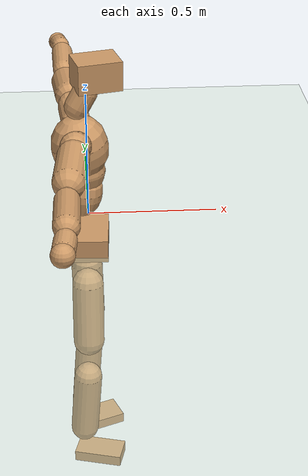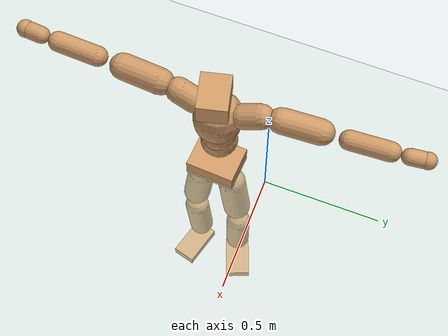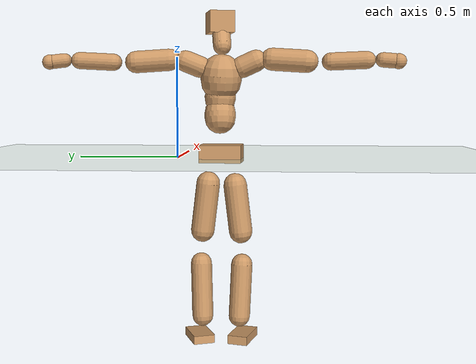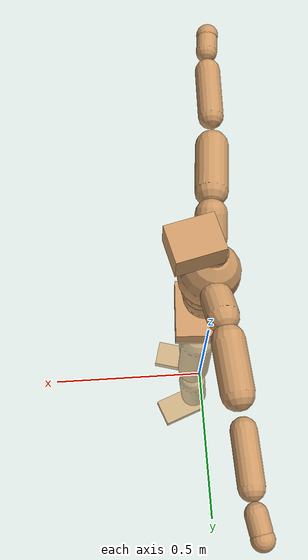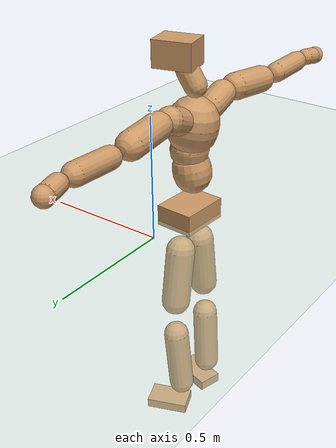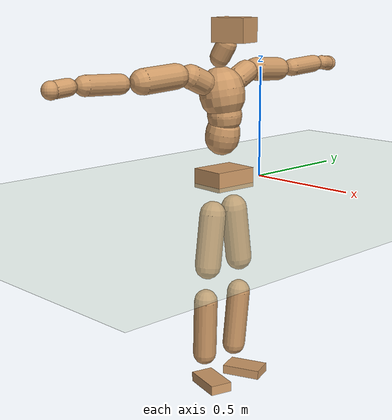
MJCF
<mujoco model="humanoid">
  <compiler coordinate="local" angle="radian"/>
  <default>
    <joint damping="0.0" armature="0.01" stiffness="0.0" limited="true"/>
    <geom conaffinity="1" condim="3" contype="7" margin="0.001" rgba="0.8 0.6 .4 1"/>
  </default>
  <asset>
    <texture type="skybox" builtin="gradient" rgb1=".4 .5 .6" rgb2="0 0 0" width="100" height="100"/>
    <texture builtin="flat" height="1278" mark="cross" markrgb="1 1 1" name="texgeom" random="0.01" rgb1="0.8 0.6 0.4" rgb2="0.8 0.6 0.4" type="cube" width="127"/>
    <texture builtin="checker" height="100" name="texplane" rgb1="0 0 0" rgb2="0.8 0.8 0.8" type="2d" width="100"/>
    <material name="MatPlane" reflectance="0.5" shininess="1" specular="1" texrepeat="60 60" texture="texplane"/>
    <material name="geom" texture="texgeom" texuniform="true"/>
  </asset>
  <worldbody>
    <light cutoff="100" diffuse="1 1 1" dir="-0 0 -1.3" directional="true" exponent="1" pos="0 0 1.3" specular=".1 .1 .1"/>
    <geom conaffinity="1" condim="3" name="floor" pos="0 0 0" rgba="0.8 0.9 0.8 1" size="100 100 .2" type="plane" material="MatPlane"/>
    <body name="Pelvis" pos="0.0002 -0.2226 0.0304">
      <freejoint name="Pelvis"/>
      <geom type="box" contype="1" conaffinity="1" density="500" pos="-0.0113 0.0006 -0.0079" size="0.0804 0.1042 0.0436" quat="0.9996 0.0000 0.0000 -0.0268" name="Pelvis"/>
      <body name="L_Hip" pos="-0.0158 0.0581 -0.0792">
        <joint name="L_Hip_x" type="hinge" pos="0 0 0" axis="1 0 0" stiffness="800" damping="80" armature="0.02" range="-180.0000 180.0000"/>
        <joint name="L_Hip_y" type="hinge" pos="0 0 0" axis="0 1 0" stiffness="800" damping="80" armature="0.02" range="-180.0000 180.0000"/>
        <joint name="L_Hip_z" type="hinge" pos="0 0 0" axis="0 0 1" stiffness="800" damping="80" armature="0.02" range="-180.0000 180.0000"/>
        <geom type="capsule" contype="1" conaffinity="1" density="500" fromto="0.0018 0.0096 -0.0803 0.0073 0.0384 -0.3211" size="0.0595" name="L_Hip"/>
        <body name="L_Knee" pos="0.0091 0.0481 -0.4013">
          <joint name="L_Knee_x" type="hinge" pos="0 0 0" axis="1 0 0" stiffness="800" damping="80" armature="0.02" range="-180.0000 180.0000"/>
          <joint name="L_Knee_y" type="hinge" pos="0 0 0" axis="0 1 0" stiffness="800" damping="80" armature="0.02" range="-180.0000 180.0000"/>
          <joint name="L_Knee_z" type="hinge" pos="0 0 0" axis="0 0 1" stiffness="800" damping="80" armature="0.02" range="-180.0000 180.0000"/>
          <geom type="capsule" contype="1" conaffinity="1" density="500" fromto="-0.0070 -0.0029 -0.0893 -0.0282 -0.0114 -0.3573" size="0.0531" name="L_Knee"/>
          <body name="L_Ankle" pos="-0.0352 -0.0143 -0.4467">
            <joint name="L_Ankle_x" type="hinge" pos="0 0 0" axis="1 0 0" stiffness="800" damping="80" armature="0.02" range="-180.0000 180.0000"/>
            <joint name="L_Ankle_y" type="hinge" pos="0 0 0" axis="0 1 0" stiffness="800" damping="80" armature="0.02" range="-180.0000 180.0000"/>
            <joint name="L_Ankle_z" type="hinge" pos="0 0 0" axis="0 0 1" stiffness="800" damping="80" armature="0.02" range="-180.0000 180.0000"/>
            <geom type="box" contype="1" conaffinity="1" density="500" pos="0.0615 0.0239 -0.0312" size="0.0888 0.0545 0.0207" quat="0.9829 0.0000 0.0000 0.1842" name="L_Ankle"/>
            <body name="L_Toe" pos="0.1229 0.0477 -0.0624">
              <joint name="L_Toe_x" type="hinge" pos="0 0 0" axis="1 0 0" stiffness="500" damping="50" armature="0.02" range="-180.0000 180.0000"/>
              <joint name="L_Toe_y" type="hinge" pos="0 0 0" axis="0 1 0" stiffness="500" damping="50" armature="0.02" range="-180.0000 180.0000"/>
              <joint name="L_Toe_z" type="hinge" pos="0 0 0" axis="0 0 1" stiffness="500" damping="50" armature="0.02" range="-180.0000 180.0000"/>
              <geom type="box" contype="1" conaffinity="1" density="500" pos="0.0000 0.0000 0.0318" size="0.0011 0.0026 0.0011" quat="0.9821 0.0000 0.0000 0.1883" name="L_Toe"/>
            </body>
          </body>
        </body>
      </body>
      <body name="R_Hip" pos="-0.0127 -0.0591 -0.0872">
        <joint name="R_Hip_x" type="hinge" pos="0 0 0" axis="1 0 0" stiffness="800" damping="80" armature="0.02" range="-180.0000 180.0000"/>
        <joint name="R_Hip_y" type="hinge" pos="0 0 0" axis="0 1 0" stiffness="800" damping="80" armature="0.02" range="-180.0000 180.0000"/>
        <joint name="R_Hip_z" type="hinge" pos="0 0 0" axis="0 0 1" stiffness="800" damping="80" armature="0.02" range="-180.0000 180.0000"/>
        <geom type="capsule" contype="1" conaffinity="1" density="500" fromto="-0.0008 -0.0096 -0.0794 -0.0031 -0.0385 -0.3175" size="0.0589" name="R_Hip"/>
        <body name="R_Knee" pos="-0.0039 -0.0481 -0.3969">
          <joint name="R_Knee_x" type="hinge" pos="0 0 0" axis="1 0 0" stiffness="800" damping="80" armature="0.02" range="-180.0000 180.0000"/>
          <joint name="R_Knee_y" type="hinge" pos="0 0 0" axis="0 1 0" stiffness="800" damping="80" armature="0.02" range="-180.0000 180.0000"/>
          <joint name="R_Knee_z" type="hinge" pos="0 0 0" axis="0 0 1" stiffness="800" damping="80" armature="0.02" range="-180.0000 180.0000"/>
          <geom type="capsule" contype="1" conaffinity="1" density="500" fromto="-0.0064 0.0037 -0.0878 -0.0258 0.0147 -0.3512" size="0.0537" name="R_Knee"/>
          <body name="R_Ankle" pos="-0.0322 0.0184 -0.439">
            <joint name="R_Ankle_x" type="hinge" pos="0 0 0" axis="1 0 0" stiffness="800" damping="80" armature="0.02" range="-180.0000 180.0000"/>
            <joint name="R_Ankle_y" type="hinge" pos="0 0 0" axis="0 1 0" stiffness="800" damping="80" armature="0.02" range="-180.0000 180.0000"/>
            <joint name="R_Ankle_z" type="hinge" pos="0 0 0" axis="0 0 1" stiffness="800" damping="80" armature="0.02" range="-180.0000 180.0000"/>
            <geom type="box" contype="1" conaffinity="1" density="500" pos="0.0656 -0.0178 -0.0329" size="0.0926 0.0508 0.0221" quat="0.9912 0.0000 0.0000 -0.1323" name="R_Ankle"/>
            <body name="R_Toe" pos="0.1311 -0.0356 -0.0658">
              <joint name="R_Toe_x" type="hinge" pos="0 0 0" axis="1 0 0" stiffness="500" damping="50" armature="0.02" range="-180.0000 180.0000"/>
              <joint name="R_Toe_y" type="hinge" pos="0 0 0" axis="0 1 0" stiffness="500" damping="50" armature="0.02" range="-180.0000 180.0000"/>
              <joint name="R_Toe_z" type="hinge" pos="0 0 0" axis="0 0 1" stiffness="500" damping="50" armature="0.02" range="-180.0000 180.0000"/>
              <geom type="box" contype="1" conaffinity="1" density="500" pos="0.0000 0.0000 0.0327" size="0.0011 0.0025 0.0011" quat="0.9923 0.0000 0.0000 -0.1235" name="R_Toe"/>
            </body>
          </body>
        </body>
      </body>
      <body name="Torso" pos="-0.0394 0.0046 0.1189">
        <joint name="Torso_x" type="hinge" pos="0 0 0" axis="1 0 0" stiffness="1000" damping="100" armature="0.02" range="-180.0000 180.0000"/>
        <joint name="Torso_y" type="hinge" pos="0 0 0" axis="0 1 0" stiffness="1000" damping="100" armature="0.02" range="-180.0000 180.0000"/>
        <joint name="Torso_z" type="hinge" pos="0 0 0" axis="0 0 1" stiffness="1000" damping="100" armature="0.02" range="-180.0000 180.0000"/>
        <geom type="capsule" contype="1" conaffinity="1" density="500" fromto="0.0145 0.0020 0.0760 0.0096 0.0013 0.0506" size="0.0777" name="Torso"/>
        <body name="Spine" pos="0.0241 0.0033 0.1266">
          <joint name="Spine_x" type="hinge" pos="0 0 0" axis="1 0 0" stiffness="1000" damping="100" armature="0.02" range="-180.0000 180.0000"/>
          <joint name="Spine_y" type="hinge" pos="0 0 0" axis="0 1 0" stiffness="1000" damping="100" armature="0.02" range="-180.0000 180.0000"/>
          <joint name="Spine_z" type="hinge" pos="0 0 0" axis="0 0 1" stiffness="1000" damping="100" armature="0.02" range="-180.0000 180.0000"/>
          <geom type="capsule" contype="1" conaffinity="1" density="500" fromto="0.0002 -0.0017 0.0307 0.0001 -0.0011 0.0205" size="0.0774" name="Spine"/>
          <body name="Chest" pos="0.0003 -0.0028 0.0512">
            <joint name="Chest_x" type="hinge" pos="0 0 0" axis="1 0 0" stiffness="1000" damping="100" armature="0.02" range="-180.0000 180.0000"/>
            <joint name="Chest_y" type="hinge" pos="0 0 0" axis="0 1 0" stiffness="1000" damping="100" armature="0.02" range="-180.0000 180.0000"/>
            <joint name="Chest_z" type="hinge" pos="0 0 0" axis="0 0 1" stiffness="1000" damping="100" armature="0.02" range="-180.0000 180.0000"/>
            <geom type="capsule" contype="1" conaffinity="1" density="500" fromto="-0.0144 -0.0049 0.0872 -0.0096 -0.0032 0.0582" size="0.1016" name="Chest"/>
            <body name="Neck" pos="-0.0292 -0.0121 0.2099">
              <joint name="Neck_x" type="hinge" pos="0 0 0" axis="1 0 0" stiffness="500" damping="50" armature="0.02" range="-180.0000 180.0000"/>
              <joint name="Neck_y" type="hinge" pos="0 0 0" axis="0 1 0" stiffness="500" damping="50" armature="0.02" range="-180.0000 180.0000"/>
              <joint name="Neck_z" type="hinge" pos="0 0 0" axis="0 0 1" stiffness="500" damping="50" armature="0.02" range="-180.0000 180.0000"/>
              <geom type="capsule" contype="1" conaffinity="1" density="500" fromto="0.0105 0.0023 0.0181 0.0422 0.0090 0.0725" size="0.0451" name="Neck"/>
              <body name="Head" pos="0.0527 0.0113 0.0906">
                <joint name="Head_x" type="hinge" pos="0 0 0" axis="1 0 0" stiffness="500" damping="50" armature="0.02" range="-180.0000 180.0000"/>
                <joint name="Head_y" type="hinge" pos="0 0 0" axis="0 1 0" stiffness="500" damping="50" armature="0.02" range="-180.0000 180.0000"/>
                <joint name="Head_z" type="hinge" pos="0 0 0" axis="0 0 1" stiffness="500" damping="50" armature="0.02" range="-180.0000 180.0000"/>
                <geom type="box" contype="1" conaffinity="1" density="500" pos="0.0274 0.0066 0.0463" size="0.0789 0.0621 0.053" quat="0.9929 0.0000 0.0000 0.1186" name="Head"/>
              </body>
            </body>
            <body name="L_Thorax" pos="-0.0198 0.0723 0.1136">
              <joint name="L_Thorax_x" type="hinge" pos="0 0 0" axis="1 0 0" stiffness="500" damping="50" armature="0.02" range="-180.0000 180.0000"/>
              <joint name="L_Thorax_y" type="hinge" pos="0 0 0" axis="0 1 0" stiffness="500" damping="50" armature="0.02" range="-180.0000 180.0000"/>
              <joint name="L_Thorax_z" type="hinge" pos="0 0 0" axis="0 0 1" stiffness="500" damping="50" armature="0.02" range="-180.0000 180.0000"/>
              <geom type="capsule" contype="1" conaffinity="1" density="500" fromto="-0.0035 0.0245 0.0098 -0.0142 0.0979 0.0391" size="0.0527" name="L_Thorax"/>
              <body name="L_Shoulder" pos="-0.0177 0.1224 0.0489">
                <joint name="L_Shoulder_x" type="hinge" pos="0 0 0" axis="1 0 0" stiffness="500" damping="50" armature="0.02" range="-720.0000 720.0000"/>
                <joint name="L_Shoulder_y" type="hinge" pos="0 0 0" axis="0 1 0" stiffness="500" damping="50" armature="0.02" range="-720.0000 720.0000"/>
                <joint name="L_Shoulder_z" type="hinge" pos="0 0 0" axis="0 0 1" stiffness="500" damping="50" armature="0.02" range="-720.0000 720.0000"/>
                <geom type="capsule" contype="1" conaffinity="1" density="500" fromto="-0.0046 0.0545 -0.0036 -0.0183 0.2180 -0.0145" size="0.0537" name="L_Shoulder"/>
                <body name="L_Elbow" pos="-0.0229 0.2725 -0.0181">
                  <joint name="L_Elbow_x" type="hinge" pos="0 0 0" axis="1 0 0" stiffness="500" damping="50" armature="0.02" range="-720.0000 720.0000"/>
                  <joint name="L_Elbow_y" type="hinge" pos="0 0 0" axis="0 1 0" stiffness="500" damping="50" armature="0.02" range="-720.0000 720.0000"/>
                  <joint name="L_Elbow_z" type="hinge" pos="0 0 0" axis="0 0 1" stiffness="500" damping="50" armature="0.02" range="-720.0000 720.0000"/>
                  <geom type="capsule" contype="1" conaffinity="1" density="500" fromto="-0.0017 0.0561 0.0028 -0.0067 0.2243 0.0113" size="0.0414" name="L_Elbow"/>
                  <body name="L_Wrist" pos="-0.0084 0.2804 0.0141">
                    <joint name="L_Wrist_x" type="hinge" pos="0 0 0" axis="1 0 0" stiffness="300" damping="30" armature="0.02" range="-180.0000 180.0000"/>
                    <joint name="L_Wrist_y" type="hinge" pos="0 0 0" axis="0 1 0" stiffness="300" damping="30" armature="0.02" range="-180.0000 180.0000"/>
                    <joint name="L_Wrist_z" type="hinge" pos="0 0 0" axis="0 0 1" stiffness="300" damping="30" armature="0.02" range="-180.0000 180.0000"/>
                    <geom type="capsule" contype="1" conaffinity="1" density="500" fromto="-0.0033 0.0178 -0.0021 -0.0130 0.0713 -0.0086" size="0.0346" name="L_Wrist"/>
                    <body name="L_Hand" pos="-0.0163 0.0892 -0.0107">
                      <joint name="L_Hand_x" type="hinge" pos="0 0 0" axis="1 0 0" stiffness="300" damping="30" armature="0.02" range="-180.0000 180.0000"/>
                      <joint name="L_Hand_y" type="hinge" pos="0 0 0" axis="0 1 0" stiffness="300" damping="30" armature="0.02" range="-180.0000 180.0000"/>
                      <joint name="L_Hand_z" type="hinge" pos="0 0 0" axis="0 0 1" stiffness="300" damping="30" armature="0.02" range="-180.0000 180.0000"/>
                      <geom type="sphere" contype="1" conaffinity="1" density="500" size="0.0364" pos="0.0000 0.0000 0.0000" name="L_Hand"/>
                    </body>
                  </body>
                </body>
              </body>
            </body>
            <body name="R_Thorax" pos="-0.0231 -0.0846 0.1127">
              <joint name="R_Thorax_x" type="hinge" pos="0 0 0" axis="1 0 0" stiffness="500" damping="50" armature="0.02" range="-180.0000 180.0000"/>
              <joint name="R_Thorax_y" type="hinge" pos="0 0 0" axis="0 1 0" stiffness="500" damping="50" armature="0.02" range="-180.0000 180.0000"/>
              <joint name="R_Thorax_z" type="hinge" pos="0 0 0" axis="0 0 1" stiffness="500" damping="50" armature="0.02" range="-180.0000 180.0000"/>
              <geom type="capsule" contype="1" conaffinity="1" density="500" fromto="-0.0015 -0.0230 0.0103 -0.0059 -0.0918 0.0412" size="0.0535" name="R_Thorax"/>
              <body name="R_Shoulder" pos="-0.0074 -0.1148 0.0515">
                <joint name="R_Shoulder_x" type="hinge" pos="0 0 0" axis="1 0 0" stiffness="500" damping="50" armature="0.02" range="-720.0000 720.0000"/>
                <joint name="R_Shoulder_y" type="hinge" pos="0 0 0" axis="0 1 0" stiffness="500" damping="50" armature="0.02" range="-720.0000 720.0000"/>
                <joint name="R_Shoulder_z" type="hinge" pos="0 0 0" axis="0 0 1" stiffness="500" damping="50" armature="0.02" range="-720.0000 720.0000"/>
                <geom type="capsule" contype="1" conaffinity="1" density="500" fromto="-0.0057 -0.0562 -0.0039 -0.0228 -0.2247 -0.0155" size="0.0554" name="R_Shoulder"/>
                <body name="R_Elbow" pos="-0.0285 -0.2809 -0.0193">
                  <joint name="R_Elbow_x" type="hinge" pos="0 0 0" axis="1 0 0" stiffness="500" damping="50" armature="0.02" range="-720.0000 720.0000"/>
                  <joint name="R_Elbow_y" type="hinge" pos="0 0 0" axis="0 1 0" stiffness="500" damping="50" armature="0.02" range="-720.0000 720.0000"/>
                  <joint name="R_Elbow_z" type="hinge" pos="0 0 0" axis="0 0 1" stiffness="500" damping="50" armature="0.02" range="-720.0000 720.0000"/>
                  <geom type="capsule" contype="1" conaffinity="1" density="500" fromto="-0.0013 -0.0575 0.0022 -0.0050 -0.2302 0.0087" size="0.0426" name="R_Elbow"/>
                  <body name="R_Wrist" pos="-0.0063 -0.2877 0.0109">
                    <joint name="R_Wrist_x" type="hinge" pos="0 0 0" axis="1 0 0" stiffness="300" damping="30" armature="0.02" range="-180.0000 180.0000"/>
                    <joint name="R_Wrist_y" type="hinge" pos="0 0 0" axis="0 1 0" stiffness="300" damping="30" armature="0.02" range="-180.0000 180.0000"/>
                    <joint name="R_Wrist_z" type="hinge" pos="0 0 0" axis="0 0 1" stiffness="300" damping="30" armature="0.02" range="-180.0000 180.0000"/>
                    <geom type="capsule" contype="1" conaffinity="1" density="500" fromto="-0.0022 -0.0185 -0.0018 -0.0087 -0.0740 -0.0072" size="0.0358" name="R_Wrist"/>
                    <body name="R_Hand" pos="-0.0109 -0.0925 -0.009">
                      <joint name="R_Hand_x" type="hinge" pos="0 0 0" axis="1 0 0" stiffness="300" damping="30" armature="0.02" range="-180.0000 180.0000"/>
                      <joint name="R_Hand_y" type="hinge" pos="0 0 0" axis="0 1 0" stiffness="300" damping="30" armature="0.02" range="-180.0000 180.0000"/>
                      <joint name="R_Hand_z" type="hinge" pos="0 0 0" axis="0 0 1" stiffness="300" damping="30" armature="0.02" range="-180.0000 180.0000"/>
                      <geom type="sphere" contype="1" conaffinity="1" density="500" size="0.0375" pos="0.0000 0.0000 0.0000" name="R_Hand"/>
                    </body>
                  </body>
                </body>
              </body>
            </body>
          </body>
        </body>
      </body>
    </body>
  </worldbody>
  <actuator>
    <motor name="L_Hip_x" joint="L_Hip_x" gear="500"/>
    <motor name="L_Hip_y" joint="L_Hip_y" gear="500"/>
    <motor name="L_Hip_z" joint="L_Hip_z" gear="500"/>
    <motor name="L_Knee_x" joint="L_Knee_x" gear="500"/>
    <motor name="L_Knee_y" joint="L_Knee_y" gear="500"/>
    <motor name="L_Knee_z" joint="L_Knee_z" gear="500"/>
    <motor name="L_Ankle_x" joint="L_Ankle_x" gear="500"/>
    <motor name="L_Ankle_y" joint="L_Ankle_y" gear="500"/>
    <motor name="L_Ankle_z" joint="L_Ankle_z" gear="500"/>
    <motor name="L_Toe_x" joint="L_Toe_x" gear="500"/>
    <motor name="L_Toe_y" joint="L_Toe_y" gear="500"/>
    <motor name="L_Toe_z" joint="L_Toe_z" gear="500"/>
    <motor name="R_Hip_x" joint="R_Hip_x" gear="500"/>
    <motor name="R_Hip_y" joint="R_Hip_y" gear="500"/>
    <motor name="R_Hip_z" joint="R_Hip_z" gear="500"/>
    <motor name="R_Knee_x" joint="R_Knee_x" gear="500"/>
    <motor name="R_Knee_y" joint="R_Knee_y" gear="500"/>
    <motor name="R_Knee_z" joint="R_Knee_z" gear="500"/>
    <motor name="R_Ankle_x" joint="R_Ankle_x" gear="500"/>
    <motor name="R_Ankle_y" joint="R_Ankle_y" gear="500"/>
    <motor name="R_Ankle_z" joint="R_Ankle_z" gear="500"/>
    <motor name="R_Toe_x" joint="R_Toe_x" gear="500"/>
    <motor name="R_Toe_y" joint="R_Toe_y" gear="500"/>
    <motor name="R_Toe_z" joint="R_Toe_z" gear="500"/>
    <motor name="Torso_x" joint="Torso_x" gear="500"/>
    <motor name="Torso_y" joint="Torso_y" gear="500"/>
    <motor name="Torso_z" joint="Torso_z" gear="500"/>
    <motor name="Spine_x" joint="Spine_x" gear="500"/>
    <motor name="Spine_y" joint="Spine_y" gear="500"/>
    <motor name="Spine_z" joint="Spine_z" gear="500"/>
    <motor name="Chest_x" joint="Chest_x" gear="500"/>
    <motor name="Chest_y" joint="Chest_y" gear="500"/>
    <motor name="Chest_z" joint="Chest_z" gear="500"/>
    <motor name="Neck_x" joint="Neck_x" gear="500"/>
    <motor name="Neck_y" joint="Neck_y" gear="500"/>
    <motor name="Neck_z" joint="Neck_z" gear="500"/>
    <motor name="Head_x" joint="Head_x" gear="500"/>
    <motor name="Head_y" joint="Head_y" gear="500"/>
    <motor name="Head_z" joint="Head_z" gear="500"/>
    <motor name="L_Thorax_x" joint="L_Thorax_x" gear="500"/>
    <motor name="L_Thorax_y" joint="L_Thorax_y" gear="500"/>
    <motor name="L_Thorax_z" joint="L_Thorax_z" gear="500"/>
    <motor name="L_Shoulder_x" joint="L_Shoulder_x" gear="500"/>
    <motor name="L_Shoulder_y" joint="L_Shoulder_y" gear="500"/>
    <motor name="L_Shoulder_z" joint="L_Shoulder_z" gear="500"/>
    <motor name="L_Elbow_x" joint="L_Elbow_x" gear="500"/>
    <motor name="L_Elbow_y" joint="L_Elbow_y" gear="500"/>
    <motor name="L_Elbow_z" joint="L_Elbow_z" gear="500"/>
    <motor name="L_Wrist_x" joint="L_Wrist_x" gear="500"/>
    <motor name="L_Wrist_y" joint="L_Wrist_y" gear="500"/>
    <motor name="L_Wrist_z" joint="L_Wrist_z" gear="500"/>
    <motor name="L_Hand_x" joint="L_Hand_x" gear="500"/>
    <motor name="L_Hand_y" joint="L_Hand_y" gear="500"/>
    <motor name="L_Hand_z" joint="L_Hand_z" gear="500"/>
    <motor name="R_Thorax_x" joint="R_Thorax_x" gear="500"/>
    <motor name="R_Thorax_y" joint="R_Thorax_y" gear="500"/>
    <motor name="R_Thorax_z" joint="R_Thorax_z" gear="500"/>
    <motor name="R_Shoulder_x" joint="R_Shoulder_x" gear="500"/>
    <motor name="R_Shoulder_y" joint="R_Shoulder_y" gear="500"/>
    <motor name="R_Shoulder_z" joint="R_Shoulder_z" gear="500"/>
    <motor name="R_Elbow_x" joint="R_Elbow_x" gear="500"/>
    <motor name="R_Elbow_y" joint="R_Elbow_y" gear="500"/>
    <motor name="R_Elbow_z" joint="R_Elbow_z" gear="500"/>
    <motor name="R_Wrist_x" joint="R_Wrist_x" gear="500"/>
    <motor name="R_Wrist_y" joint="R_Wrist_y" gear="500"/>
    <motor name="R_Wrist_z" joint="R_Wrist_z" gear="500"/>
    <motor name="R_Hand_x" joint="R_Hand_x" gear="500"/>
    <motor name="R_Hand_y" joint="R_Hand_y" gear="500"/>
    <motor name="R_Hand_z" joint="R_Hand_z" gear="500"/>
  </actuator>
  <contact>
    <exclude body1="Torso" body2="Chest"/>
    <exclude body1="Head" body2="Chest"/>
    <exclude body1="R_Knee" body2="R_Toe"/>
    <exclude body1="R_Knee" body2="L_Ankle"/>
    <exclude body1="R_Knee" body2="L_Toe"/>
    <exclude body1="L_Knee" body2="L_Toe"/>
    <exclude body1="L_Knee" body2="R_Ankle"/>
    <exclude body1="L_Knee" body2="R_Toe"/>
    <exclude body1="L_Shoulder" body2="Chest"/>
    <exclude body1="R_Shoulder" body2="Chest"/>
  </contact>
  <sensor/>
  <size njmax="700" nconmax="700"/>
</mujoco>
